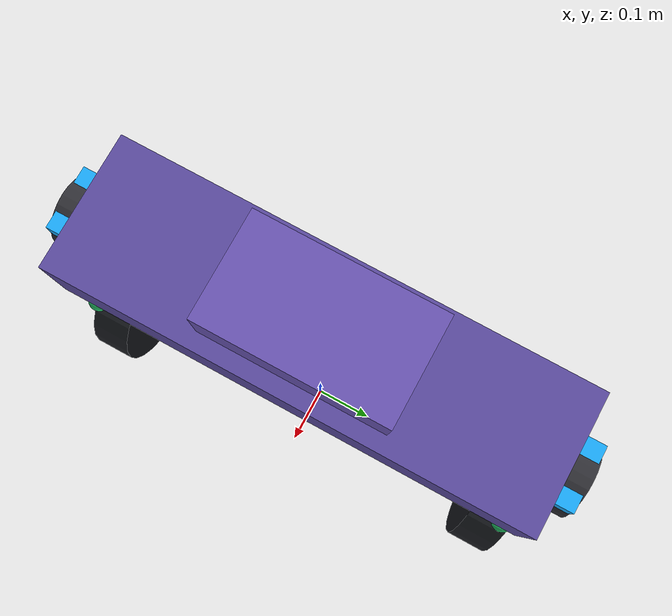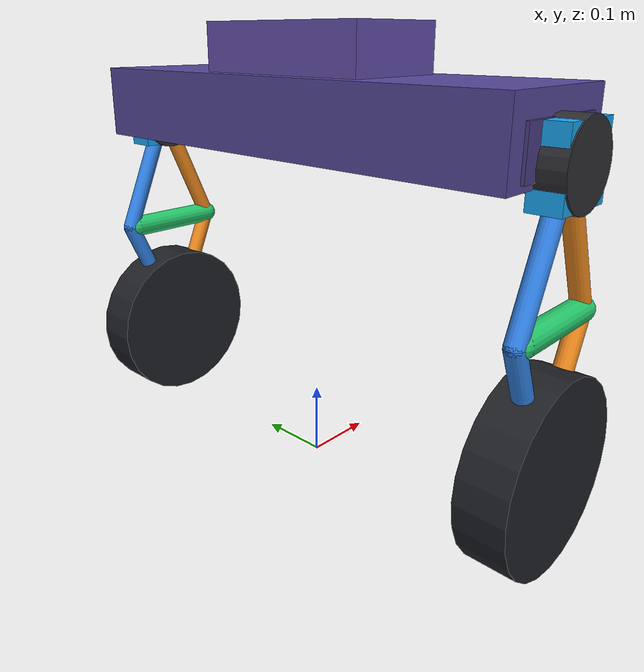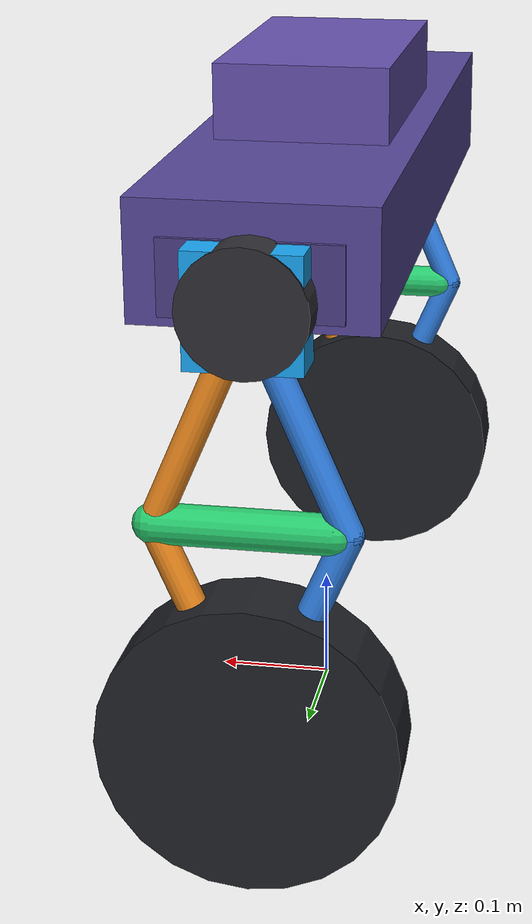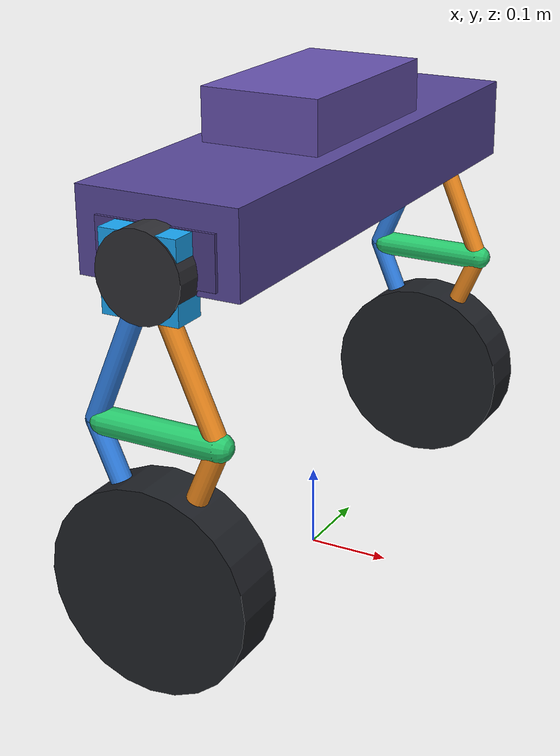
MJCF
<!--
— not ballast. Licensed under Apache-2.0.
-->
<mujoco model="wide_car">
  <compiler angle="radian" autolimits="true"/>
  <option timestep="0.001" integrator="implicitfast" iterations="60"
          ls_iterations="20" noslip_iterations="4"/>

  <default>
    <joint armature="0.002" damping="0.15"/>
    <geom friction="0.8 0.01 0.001" solref="0.004 1"/>
    <default class="link">
      <geom type="capsule" size="0.012" contype="0" conaffinity="0"
            rgba="0.82 0.84 0.88 1"/>
    </default>
    <default class="servo">
      <geom type="cylinder" size="0.050 0.022" contype="0" conaffinity="0"
            quat="0.7071068 0.7071068 0 0" rgba="0.18 0.18 0.20 1"/>
    </default>
    <default class="wheel">
      <geom type="cylinder" size="0.120 0.032" friction="1.1 0.02 0.001"
            rgba="0.12 0.13 0.15 1"/>
    </default>
  </default>

  <worldbody>
    <body name="trunk" pos="0 0 0.408">
      <freejoint name="trunk_freejoint"/>
      <!-- Chassis 1.40 + 36V 6Ah 2.10 + compute 0.50 + covers 0.20 -->
      <inertial pos="0.00014 0.00000 0.07200" mass="4.20"
                fullinertia="0.154 0.016 0.163 0 0 0"/>
      <geom name="trunk_collision" type="box" pos="0 0 0.086"
            size="0.095 0.328 0.048" rgba="0.34 0.28 0.60 1"/>
      <geom name="trunk_pod" type="box" pos="0 0 0.148"
            size="0.072 0.126 0.048" rgba="0.40 0.32 0.68 1"
            contype="0" conaffinity="0"/>
      <geom name="left_sponson" type="box" pos="0 0.278 0.076"
            size="0.070 0.054 0.030" rgba="0.30 0.24 0.52 1"
            contype="0" conaffinity="0"/>
      <geom name="right_sponson" type="box" pos="0 -0.278 0.076"
            size="0.070 0.054 0.030" rgba="0.30 0.24 0.52 1"
            contype="0" conaffinity="0"/>
      <geom name="axle_beam" type="capsule" fromto="0 0.336 0.050 0 -0.336 0.050"
            size="0.016" rgba="0.22 0.20 0.38 1"
            contype="0" conaffinity="0"/>
      <site name="imu" pos="-0.04095 0.04000 0.155" size="0.006"/>

      <body name="left_hip_carrier" pos="0 0.3411 0.0602">
        <joint name="left_hip_slide_x" type="slide" axis="1 0 0"
               range="-0.020 0.020" stiffness="10000" damping="300"
               springref="0" armature="0.05"/>
        <joint name="left_hip_slide_z" type="slide" axis="0 0 1"
               range="-0.025 0.025" stiffness="22000" damping="500"
               springref="0" armature="0.05"/>
        <!-- MGN12H x2 + NEMA17 x2 + SFU1204 x2 + plate = 1.80 kg -->
        <inertial pos="0 0 0" mass="1.80"
                  diaginertia="0.00135 0.00192 0.00135"/>
        <geom type="box" size="0.045 0.020 0.045" density="0"
              contype="0" conaffinity="0" rgba="0.10 0.65 0.95 1"/>
        <site name="left_hip_origin" size="0.008" rgba="0.10 0.65 0.95 1"/>

        <body name="left_front_upper" pos="0 0 0">
          <joint name="left_hip" type="hinge" axis="0 1 0" range="-0.65 0.65"/>
          <geom class="servo" name="left_hip_motor" mass="0.507"/>
          <geom class="link" name="left_front_upper_bar"
                fromto="0 0 0 0.075 0 -0.174" mass="0.16"
                rgba="0.95 0.55 0.12 1"/>
          <site name="left_front_knee" pos="0.075 0 -0.174" size="0.009"
                rgba="0.95 0.55 0.12 1"/>

          <body name="left_front_lower" pos="0.075 0 -0.174">
            <joint name="left_front_knee_hinge" type="hinge" axis="0 1 0"/>
            <geom class="link" name="left_front_lower_bar"
                  fromto="0 0 0 -0.075 0 -0.174" mass="0.16"
                  rgba="0.95 0.55 0.12 1"/>

            <body name="left_strut_outer" quat="0 0 0 1">
              <joint name="left_strut_angle" type="hinge" axis="0 1 0"/>
              <geom name="left_strut_sleeve" type="capsule"
                    fromto="0 0 0 0.140 0 0" size="0.016"
                    mass="0.90" contype="0" conaffinity="0"
                    rgba="0.15 0.78 0.42 1"/>
              <site name="left_strut_sleeve_end" pos="0.140 0 0" size="0.004"/>
              <body name="left_strut_middle" pos="0.050 0 0">
                <joint name="left_strut_extension" type="slide" axis="1 0 0"
                       range="-0.020 0.094" stiffness="5000" damping="300"
                       springref="0" armature="0.04"/>
                <geom name="left_strut_middle_sleeve" type="capsule"
                      fromto="-0.040 0 0 0.100 0 0" size="0.011"
                      mass="0.45" contype="0" conaffinity="0"
                      rgba="0.85 0.95 0.88 1"/>
                <site name="left_strut_middle_rear" pos="-0.040 0 0" size="0.004"/>
                <site name="left_strut_middle_end" pos="0.100 0 0" size="0.004"/>
                <body name="left_strut_inner" pos="0.050 0 0">
                  <joint name="left_strut_extension_stage2" type="slide" axis="1 0 0"
                         range="-0.020 0.094" stiffness="5000" damping="300"
                         springref="0" armature="0.04"/>
                  <geom name="left_strut_rod" type="capsule"
                        fromto="-0.070 0 0 0.050 0 0" size="0.007"
                        mass="0.25" contype="0" conaffinity="0"
                        rgba="0.98 0.72 0.20 1"/>
                  <site name="left_strut_rod_rear" pos="-0.070 0 0" size="0.004"/>
                  <site name="left_strut_endpoint" pos="0.050 0 0" size="0.008"
                        rgba="0.15 0.78 0.42 1"/>
                </body>
              </body>
            </body>

            <body name="left_wheel_node" pos="-0.075 0 -0.174">
              <joint name="left_front_bottom_hinge" type="hinge" axis="0 1 0"/>
              <inertial pos="0 0 0" mass="0.04" diaginertia="0.00004 0.00004 0.00004"/>
              <site name="left_bottom_closure" size="0.008"/>
              <body name="left_wheel">
                <joint name="left_wheel_joint" type="hinge" axis="0 1 0"
                       damping="0.005" armature="0"/>
                <geom class="wheel" quat="0.7071068 0.7071068 0 0" mass="3.00"/>
              </body>
            </body>
          </body>
        </body>

        <body name="left_rear_upper" pos="0 0 0">
          <joint name="left_rear_hip_hinge" type="hinge" axis="0 1 0"/>
          <geom class="link" name="left_rear_upper_bar"
                fromto="0 0 0 -0.075 0 -0.174" mass="0.16"
                rgba="0.20 0.52 0.92 1"/>
          <site name="left_rear_knee" pos="-0.075 0 -0.174" size="0.009"
                rgba="0.20 0.52 0.92 1"/>
          <body name="left_rear_lower" pos="-0.075 0 -0.174">
            <joint name="left_rear_knee_hinge" type="hinge" axis="0 1 0"/>
            <geom class="link" name="left_rear_lower_bar"
                  fromto="0 0 0 0.075 0 -0.174" mass="0.16"
                  rgba="0.20 0.52 0.92 1"/>
            <site name="left_rear_bottom_endpoint" pos="0.075 0 -0.174" size="0.008"/>
          </body>
        </body>
      </body>

      <body name="right_hip_carrier" pos="0 -0.3411 0.0602">
        <joint name="right_hip_slide_x" type="slide" axis="1 0 0"
               range="-0.020 0.020" stiffness="10000" damping="300"
               springref="0" armature="0.05"/>
        <joint name="right_hip_slide_z" type="slide" axis="0 0 1"
               range="-0.025 0.025" stiffness="22000" damping="500"
               springref="0" armature="0.05"/>
        <inertial pos="0 0 0" mass="1.80"
                  diaginertia="0.00135 0.00192 0.00135"/>
        <geom type="box" size="0.045 0.020 0.045" density="0"
              contype="0" conaffinity="0" rgba="0.10 0.65 0.95 1"/>
        <site name="right_hip_origin" size="0.008" rgba="0.10 0.65 0.95 1"/>

        <body name="right_front_upper" pos="0 0 0">
          <joint name="right_hip" type="hinge" axis="0 1 0" range="-0.65 0.65"/>
          <geom class="servo" name="right_hip_motor" mass="0.507"/>
          <geom class="link" name="right_front_upper_bar"
                fromto="0 0 0 0.075 0 -0.174" mass="0.16"
                rgba="0.95 0.55 0.12 1"/>
          <site name="right_front_knee" pos="0.075 0 -0.174" size="0.009"
                rgba="0.95 0.55 0.12 1"/>

          <body name="right_front_lower" pos="0.075 0 -0.174">
            <joint name="right_front_knee_hinge" type="hinge" axis="0 1 0"/>
            <geom class="link" name="right_front_lower_bar"
                  fromto="0 0 0 -0.075 0 -0.174" mass="0.16"
                  rgba="0.95 0.55 0.12 1"/>

            <body name="right_strut_outer" quat="0 0 0 1">
              <joint name="right_strut_angle" type="hinge" axis="0 1 0"/>
              <geom name="right_strut_sleeve" type="capsule"
                    fromto="0 0 0 0.140 0 0" size="0.016"
                    mass="0.90" contype="0" conaffinity="0"
                    rgba="0.15 0.78 0.42 1"/>
              <site name="right_strut_sleeve_end" pos="0.140 0 0" size="0.004"/>
              <body name="right_strut_middle" pos="0.050 0 0">
                <joint name="right_strut_extension" type="slide" axis="1 0 0"
                       range="-0.020 0.094" stiffness="5000" damping="300"
                       springref="0" armature="0.04"/>
                <geom name="right_strut_middle_sleeve" type="capsule"
                      fromto="-0.040 0 0 0.100 0 0" size="0.011"
                      mass="0.45" contype="0" conaffinity="0"
                      rgba="0.85 0.95 0.88 1"/>
                <site name="right_strut_middle_rear" pos="-0.040 0 0" size="0.004"/>
                <site name="right_strut_middle_end" pos="0.100 0 0" size="0.004"/>
                <body name="right_strut_inner" pos="0.050 0 0">
                  <joint name="right_strut_extension_stage2" type="slide" axis="1 0 0"
                         range="-0.020 0.094" stiffness="5000" damping="300"
                         springref="0" armature="0.04"/>
                  <geom name="right_strut_rod" type="capsule"
                        fromto="-0.070 0 0 0.050 0 0" size="0.007"
                        mass="0.25" contype="0" conaffinity="0"
                        rgba="0.98 0.72 0.20 1"/>
                  <site name="right_strut_rod_rear" pos="-0.070 0 0" size="0.004"/>
                  <site name="right_strut_endpoint" pos="0.050 0 0" size="0.008"
                        rgba="0.15 0.78 0.42 1"/>
                </body>
              </body>
            </body>

            <body name="right_wheel_node" pos="-0.075 0 -0.174">
              <joint name="right_front_bottom_hinge" type="hinge" axis="0 1 0"/>
              <inertial pos="0 0 0" mass="0.04" diaginertia="0.00004 0.00004 0.00004"/>
              <site name="right_bottom_closure" size="0.008"/>
              <body name="right_wheel">
                <joint name="right_wheel_joint" type="hinge" axis="0 1 0"
                       damping="0.005" armature="0"/>
                <geom class="wheel" quat="0.7071068 0.7071068 0 0" mass="3.00"/>
              </body>
            </body>
          </body>
        </body>

        <body name="right_rear_upper" pos="0 0 0">
          <joint name="right_rear_hip_hinge" type="hinge" axis="0 1 0"/>
          <geom class="link" name="right_rear_upper_bar"
                fromto="0 0 0 -0.075 0 -0.174" mass="0.16"
                rgba="0.20 0.52 0.92 1"/>
          <site name="right_rear_knee" pos="-0.075 0 -0.174" size="0.009"
                rgba="0.20 0.52 0.92 1"/>
          <body name="right_rear_lower" pos="-0.075 0 -0.174">
            <joint name="right_rear_knee_hinge" type="hinge" axis="0 1 0"/>
            <geom class="link" name="right_rear_lower_bar"
                  fromto="0 0 0 0.075 0 -0.174" mass="0.16"
                  rgba="0.20 0.52 0.92 1"/>
            <site name="right_rear_bottom_endpoint" pos="0.075 0 -0.174" size="0.008"/>
          </body>
        </body>
      </body>
    </body>
  </worldbody>

  <equality>
    <connect name="left_four_bar_closure"
             site1="left_rear_bottom_endpoint" site2="left_bottom_closure"
             solref="0.002 1" solimp="0.95 0.99 0.001"/>
    <connect name="left_strut_closure"
             site1="left_strut_endpoint" site2="left_rear_knee"
             solref="0.002 1" solimp="0.95 0.99 0.001"/>
    <joint name="left_strut_stage_sync"
           joint1="left_strut_extension" joint2="left_strut_extension_stage2"
           polycoef="0 1 0 0 0" solref="0.0002 1"
           solimp="0.999 0.9999 0.0001"/>
    <connect name="right_four_bar_closure"
             site1="right_rear_bottom_endpoint" site2="right_bottom_closure"
             solref="0.002 1" solimp="0.95 0.99 0.001"/>
    <connect name="right_strut_closure"
             site1="right_strut_endpoint" site2="right_rear_knee"
             solref="0.002 1" solimp="0.95 0.99 0.001"/>
    <joint name="right_strut_stage_sync"
           joint1="right_strut_extension" joint2="right_strut_extension_stage2"
           polycoef="0 1 0 0 0" solref="0.0002 1"
           solimp="0.999 0.9999 0.0001"/>
  </equality>

  <actuator>
    <position name="left_hip" joint="left_hip" kp="50" kv="2.0"
              ctrlrange="-0.65 0.65" forcerange="-16 16"/>
    <position name="left_strut" joint="left_strut_extension" kp="8000" kv="100"
              ctrlrange="-0.040 0.165" forcerange="-500 500"/>
    <motor name="left_wheel" joint="left_wheel_joint"
           ctrlrange="-20 20" forcerange="-20 20"/>
    <position name="right_hip" joint="right_hip" kp="50" kv="2.0"
              ctrlrange="-0.65 0.65" forcerange="-16 16"/>
    <position name="right_strut" joint="right_strut_extension" kp="8000" kv="100"
              ctrlrange="-0.040 0.165" forcerange="-500 500"/>
    <motor name="right_wheel" joint="right_wheel_joint"
           ctrlrange="-20 20" forcerange="-20 20"/>
  </actuator>

  <sensor>
    <framequat name="imu_quat" objtype="site" objname="imu"/>
    <gyro name="imu_gyro" site="imu"/>
    <velocimeter name="imu_velocity" site="imu"/>
    <jointpos name="left_strut_pos" joint="left_strut_extension"/>
    <jointvel name="left_strut_vel" joint="left_strut_extension"/>
    <jointpos name="right_strut_pos" joint="right_strut_extension"/>
    <jointvel name="right_strut_vel" joint="right_strut_extension"/>
    <jointpos name="left_hip_slide_x_pos" joint="left_hip_slide_x"/>
    <jointpos name="left_hip_slide_z_pos" joint="left_hip_slide_z"/>
    <jointpos name="right_hip_slide_x_pos" joint="right_hip_slide_x"/>
    <jointpos name="right_hip_slide_z_pos" joint="right_hip_slide_z"/>
  </sensor>
</mujoco>
